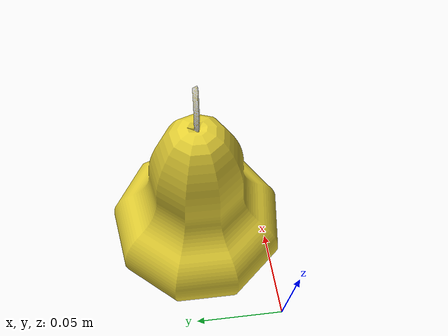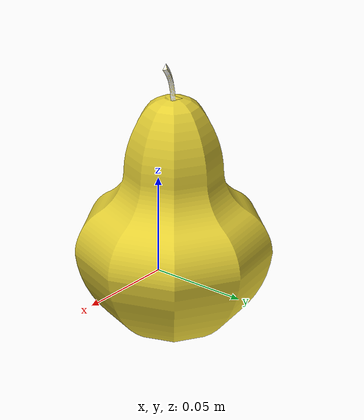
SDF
<?xml version="1.0" ?>
<sdf version="1.4">
  <model name="Pear">
    <link name="Pear_link">
      <inertial>
        <pose>0 0 0 0 0 0</pose>
        <mass>0.08</mass>
      </inertial>

      <visual name="Pear_visual">
        <pose>0 0 0 0 0 0</pose>
        <geometry>
          <mesh>
            <uri>model://Pear/meshes/Pear.dae</uri>
          </mesh>
        </geometry>
      </visual>

      <collision name="Pear_collision">
        <pose>0 0 0 0 0 0</pose>
        <geometry>
          <mesh>
            <uri>model://Pear/meshes/Pear.dae</uri>
          </mesh>
        </geometry>
        <surface>
          <friction>
            <ode>
              <mu>0.8</mu>
              <mu2>0.8</mu2>
              <fdir1>0.0 0.0 0.0</fdir1>
              <slip1>0.01</slip1>
              <slip2>0.01</slip2>
            </ode>
          </friction>
        </surface>
      </collision>

    </link>
  </model>
</sdf>
